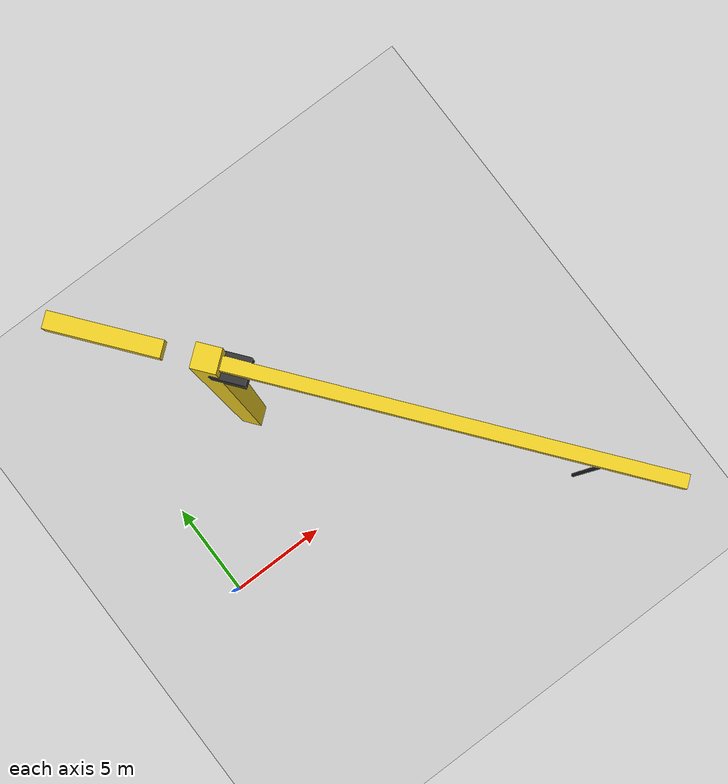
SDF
<sdf version="1.6">
 <world name="outdoor">
  <gravity>0 0 -9.8</gravity>
  <physics name="1ms" type="ode">
   <max_step_size>0.001</max_step_size>
   <real_time_factor>1.0</real_time_factor>
  </physics>
  <plugin filename="gz-sim-physics-system" name="gz::sim::systems::Physics"/>
  <plugin filename="gz-sim-user-commands-system" name="gz::sim::systems::UserCommands"/>
  <plugin filename="gz-sim-scene-broadcaster-system" name="gz::sim::systems::SceneBroadcaster"/>
  <plugin filename="gz-sim-sensors-system" name="gz::sim::systems::Sensors">
   <render_engine>ogre2</render_engine>
  </plugin>
  <plugin filename="gz-sim-imu-system" name="gz::sim::systems::Imu"/>
  <plugin filename="gz-sim-contact-system" name="gz::sim::systems::Contact"/>
  <spherical_coordinates>
   <surface_model>EARTH_WGS84</surface_model>
   <world_frame_orientation>ENU</world_frame_orientation>
   <latitude_deg>-22.986687</latitude_deg>
   <longitude_deg>-43.202501</longitude_deg>
   <elevation>0</elevation>
   <heading_deg>0</heading_deg>
  </spherical_coordinates>
  <light name="sun" type="directional">
   <pose>0 0 10 0 -0 0</pose>
   <diffuse>0.8 0.8 0.8 1</diffuse>
   <specular>0.1 0.1 0.1 1</specular>
   <attenuation>
    <range>1000</range>
    <constant>0.9</constant>
    <linear>0.01</linear>
    <quadratic>0.001</quadratic>
   </attenuation>
   <direction>-0.5 0.5 -1</direction>
  </light>
  <model name="ground_plane">
   <static>1</static>
   <link name="link">
    <collision name="collision">
     <geometry><plane><normal>0 0 1</normal><size>100 100</size></plane></geometry>
     <surface><friction><ode><mu>100</mu><mu2>50</mu2></ode></friction></surface>
    </collision>
    <visual name="visual">
     <cast_shadows>0</cast_shadows>
     <geometry><plane><normal>0 0 1</normal><size>100 100</size></plane></geometry>
     <material>
      <script><uri>file://media/materials/scripts/gazebo.material</uri><name>Gazebo/Grey</name></script>
     </material>
    </visual>
   </link>
  </model>
  <model name="tower_crane">
   <static>1</static>
   <link name="link">
    <collision name="collision">
     <geometry><mesh><uri>model://tower_crane/meshes/tower_crane.dae</uri></mesh></geometry>
    </collision>
    <visual name="visual">
     <geometry><mesh><uri>model://tower_crane/meshes/tower_crane.dae</uri></mesh></geometry>
    </visual>
   </link>
   <pose>6.03726 6.79238 0 0 0 -0.898155</pose>
  </model>
 </world>
</sdf>
